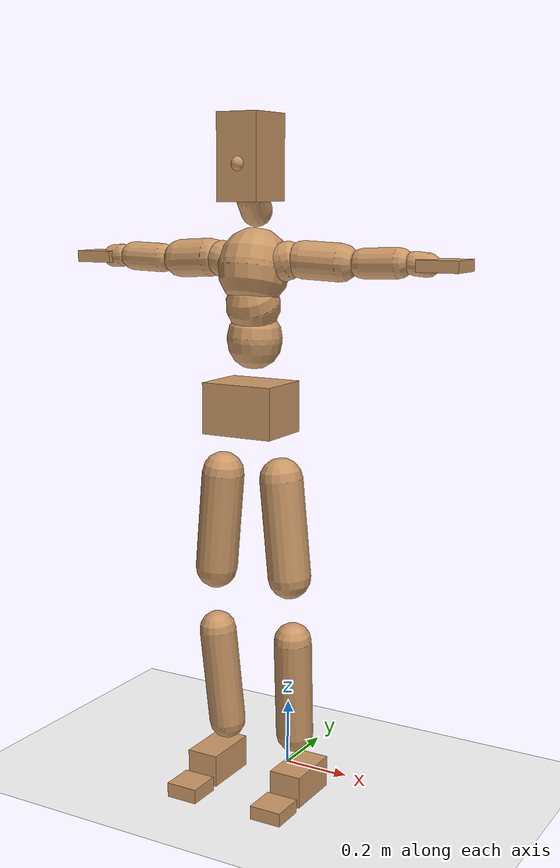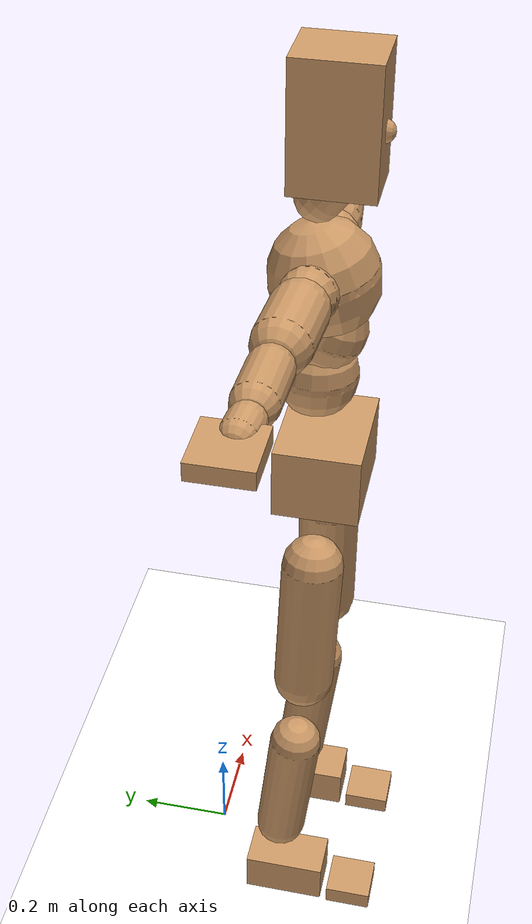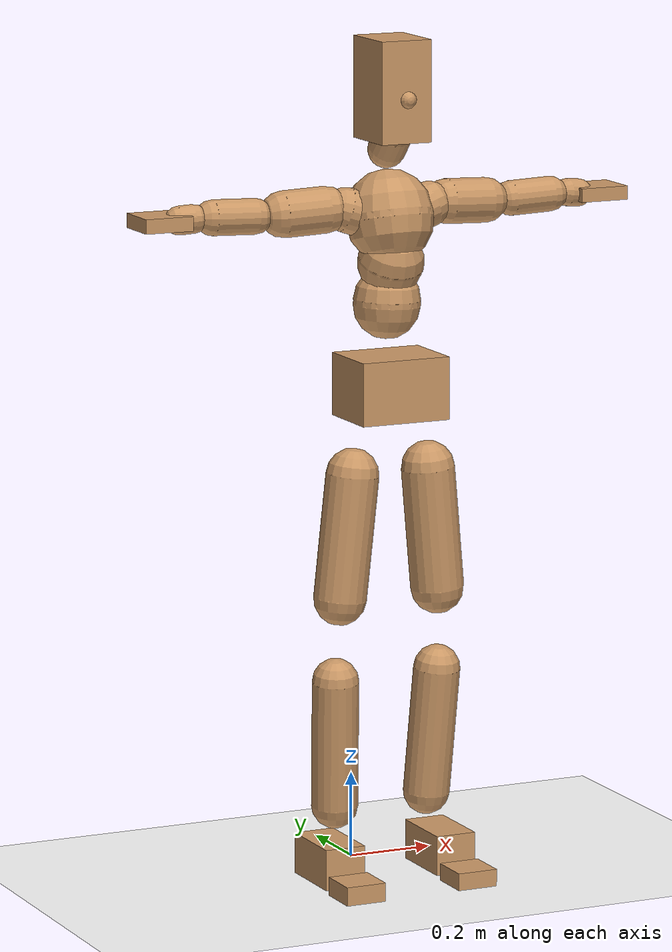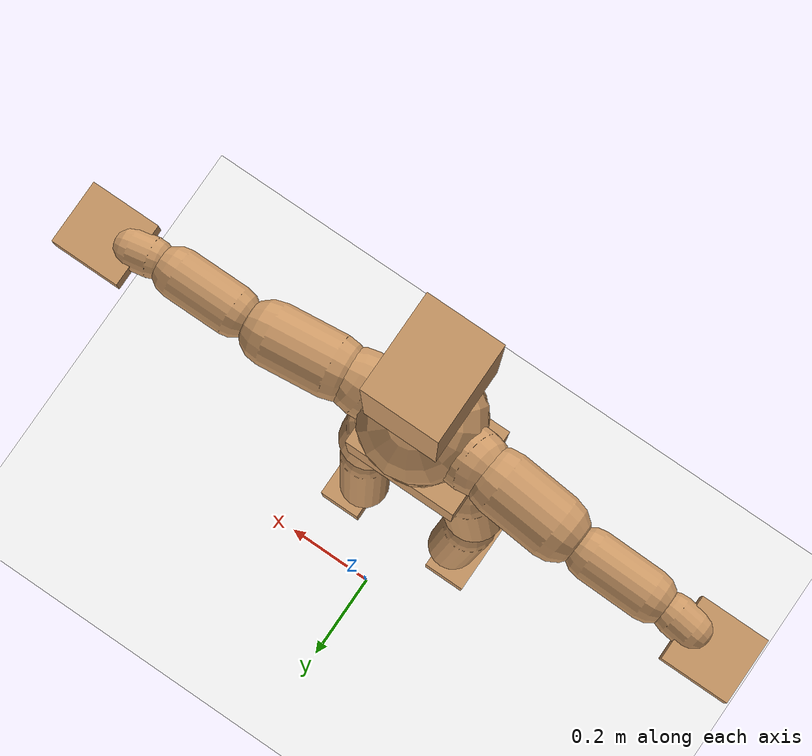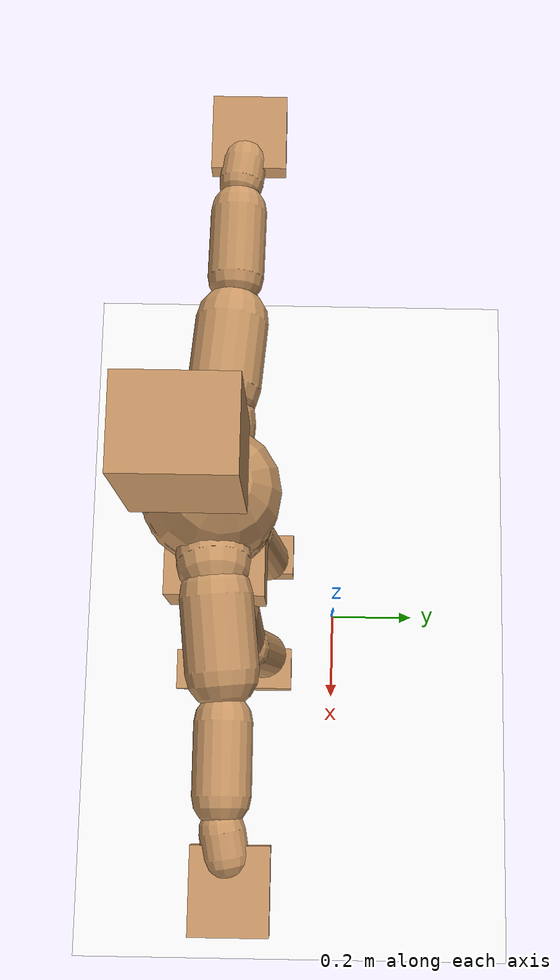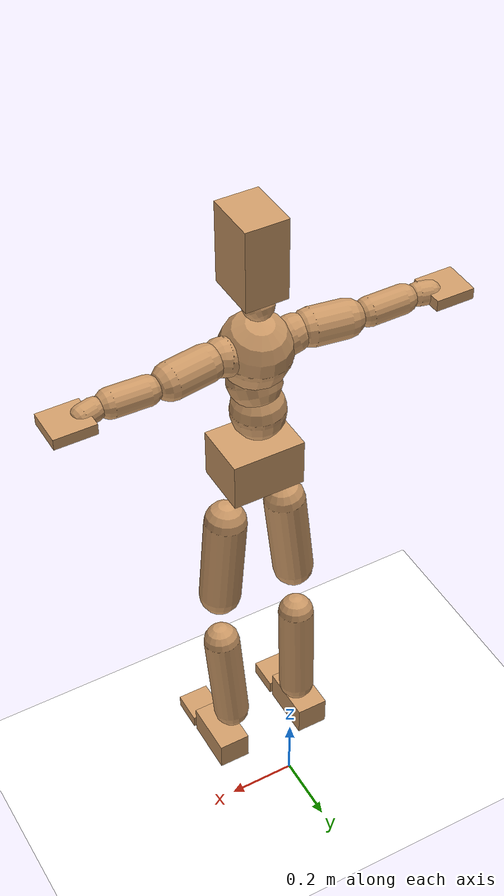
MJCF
<mujoco model="humanoid">
  <option integrator="implicitfast" />

  <visual>
    <global offwidth="1280" offheight="960" />
    <headlight active="1" ambient="0.34 0.34 0.34" diffuse="0.5 0.5 0.5" />
  </visual>

  <default>
    <joint damping="2" stiffness="2" armature="0.01" limited="true" solimplimit="0 .99 .01" />
    <geom condim="1" friction="0.7 0.005 0.0001" solimp=".99 .99 .003" solref="0.015 1" margin="0.001" rgba="0.8 0.6 .4 1" />
    <default class="smplcontact">
      <geom condim="3" friction="1. 0.005 0.0001" solref="0.015 1" solimp="0.98 0.98 0.001" priority="1" />
    </default>
    <default class="stiff_medium">
      <joint stiffness="10" />
    </default>
    <default class="stiff_medium_higher">
      <joint stiffness="50" />
    </default>
    <default class="stiff_high">
      <joint stiffness="100" />
    </default>
  </default>

  <asset>
    <texture type="skybox" builtin="gradient" rgb1="0.99 0.99 0.99" rgb2="0.608 0.828 0.892" width="100" />
    <texture builtin="flat" height="1278" mark="cross" markrgb="1 1 1" name="texgeom" random="0.01" rgb1="0.8 0.6 0.4" rgb2="0.8 0.6 0.4" type="cube" width="127" />
    <texture name="texplane" type="2d" builtin="checker" markrgb="1 1 1" rgb1="0.756 0.772 0.76" rgb2="0.6 0.6 0.6" width="100" height="100" />
    <material name="MatPlane" reflectance="0.5" texture="texplane" texrepeat="1 1" texuniform="true" />
    <material name="geom" texture="texgeom" texuniform="true" />
  </asset>

  <worldbody>
    <light name="tracking_light" pos="0 0 7" dir="0 0 -1" directional="true" cutoff="100" exponent="1" diffuse="1 1 1" specular="0.1 0.1 0.1" mode="trackcom" />
    <camera name="back" pos="0 3 2.4" xyaxes="-1 0 0 0 -1 2" mode="trackcom" />
    <camera name="side" pos="-3 0 2.4" xyaxes="0 -1 0 1 0 2" mode="trackcom" />
    <camera name="front_side" pos="-2.8 -2.8 0.8" xyaxes="0.5 -0.5 0 0.1 0.1 1" mode="trackcom" />
    <geom condim="3" name="floor" pos="0 0 0" rgba="1 1 1 1" size="100 100 .2" type="plane" material="MatPlane" />
    <body name="Pelvis" pos="-0.0018 -0.2233 1.16548" euler="90 0 0">
      <site name="Pelvis" size="0.01" />
      <freejoint name="Pelvis" />
      <geom type="box" pos="-0.0000 -0.0121 -0.0055" size="0.1069 0.0722 0.083" quat="1.0000 0.0000 0.0000 0.0000" density="3165.830099" name="Pelvis" />
      <body name="L_Hip" pos="0.086875 -0.11425 -0.0085">
        <joint name="L_Hip_x" type="hinge" pos="0 0 0" axis="1 0 0" stiffness="14.589841836734694" range="-160.0 22.92" class="stiff_medium" damping="24.10689143795971" armature="0.017703099984975993"/>
        <joint name="L_Hip_y" type="hinge" pos="0 0 0" axis="0 1 0" stiffness="14.527612551020406" range="-70.0 70.0" class="stiff_medium" damping="14.262213477061751" armature="0.014001662871370732"/>
        <joint name="L_Hip_z" type="hinge" pos="0 0 0" axis="0 0 1" stiffness="14.532940204081633" range="-28.65 90.0" class="stiff_medium" damping="16.042326803653772" armature="0.01770847782081624"/>
        <geom type="capsule" density="2040.816327" fromto="0.008625 -0.09375 -0.001125 0.03425 -0.37525 -0.0045" size="0.0615" name="L_Hip" />
        <body name="L_Knee" pos="0.042875 -0.469 -0.005625">
          <joint name="L_Knee_x" type="hinge" pos="0 0 0" axis="1 0 0" range="-5.16 171.89" damping="12.427866473289068" armature="0.016955687393418697" stiffness="2.8466087346938775"/>
          <joint name="L_Knee_y" type="hinge" pos="0 0 0" axis="0 1 0" range="-4.58 6.88" damping="11.131948599716756" armature="0.013404538190087151" stiffness="2.888953489795919"/>
          <joint name="L_Knee_z" type="hinge" pos="0 0 0" axis="0 0 1" range="-6.88 4.58" damping="12.396032357314194" armature="0.016980355499687936" stiffness="2.8279299387755104"/>
          <geom type="capsule" density="1234.567901" fromto="-0.003375 -0.0995 -0.010875 -0.013625 -0.398 -0.04375" size="0.0541" name="L_Knee" />
          <body name="L_Ankle" pos="-0.017 -0.4975 -0.054625">
            <joint name="L_Ankle_x" type="hinge" pos="0 0 0" axis="1 0 0" range="-45.84 45.84" class="stiff_medium" damping="7.851672460897973" armature="0.013699724540716359" stiffness="12.5"/>
            <joint name="L_Ankle_y" type="hinge" pos="0 0 0" axis="0 1 0" range="-74.48 22.92" class="stiff_medium" damping="3.906065471805431" armature="0.013562086640027188" stiffness="12.5"/>
            <joint name="L_Ankle_z" type="hinge" pos="0 0 0" axis="0 0 1" range="-4.58 4.58" class="stiff_medium" damping="7.548153538649296" armature="0.01266102707622753" stiffness="12.5"/>
            <geom type="box" pos="0.029125 -0.029875 0.03025" size="0.0483 0.0464 0.085" quat="1.0000 0.0000 0.0000 0.0000" density="449.071558" name="L_Ankle" class="smplcontact" />
            <body name="L_Toe" pos="0.033 -0.06975 0.149125">
              <joint name="L_Toe_x" type="hinge" pos="0 0 0" axis="1 0 0" range="-91.67 22.92" armature="0.012138557001780384" damping="2.4635905708721553" stiffness="2.5"/>
              <joint name="L_Toe_y" type="hinge" pos="0 0 0" axis="0 1 0" range="-4.58 4.58" armature="0.01150678605468797" damping="2.3986231524239034" stiffness="2.5"/>
              <joint name="L_Toe_z" type="hinge" pos="0 0 0" axis="0 0 1" range="-4.58 4.58" armature="0.010229379204578662" damping="2.261567952171531" stiffness="2.5"/>
              <geom type="box" pos="-0.00375 0.006875 0.031" size="0.0478 0.02 0.0496" quat="1.0000 0.0000 0.0000 0.0000" density="423.206892" name="L_Toe" class="smplcontact" />
            </body>
          </body>
        </body>
      </body>
      <body name="R_Hip" pos="-0.084625 -0.113125 -0.005375">
        <joint name="R_Hip_x" type="hinge" pos="0 0 0" axis="1 0 0" stiffness="14.589841836734694" range="-160.0 22.92" class="stiff_medium" damping="24.10689143795971" armature="0.017703099984975993"/>
        <joint name="R_Hip_y" type="hinge" pos="0 0 0" axis="0 1 0" stiffness="14.527612551020406" range="-70.0 70.0" class="stiff_medium" damping="14.262213477061751" armature="0.014001662871370732"/>
        <joint name="R_Hip_z" type="hinge" pos="0 0 0" axis="0 0 1" stiffness="14.532940204081633" range="-90.0 28.65" class="stiff_medium" damping="16.042326803653772" armature="0.01770847782081624"/>
        <geom type="capsule" density="2040.816327" fromto="-0.009625 -0.095625 -0.00225 -0.03825 -0.382625 -0.008875" size="0.0606" name="R_Hip" />
        <body name="R_Knee" pos="-0.047875 -0.47825 -0.011125">
          <joint name="R_Knee_x" type="hinge" pos="0 0 0" axis="1 0 0" range="-5.16 171.89" damping="12.427866473289068" armature="0.016955687393418697" stiffness="2.8466087346938775"/>
          <joint name="R_Knee_y" type="hinge" pos="0 0 0" axis="0 1 0" range="-6.88 4.58" damping="11.131948599716756" armature="0.013404538190087151" stiffness="2.888953489795919"/>
          <joint name="R_Knee_z" type="hinge" pos="0 0 0" axis="0 0 1" range="-4.58 6.88" damping="12.396032357314194" armature="0.016980355499687936" stiffness="2.8279299387755104"/>
          <geom type="capsule" density="1234.567901" fromto="0.004 -0.099625 -0.010625 0.01575 -0.398375 -0.04225" size="0.0541" name="R_Knee" />
          <body name="R_Ankle" pos="0.01975 -0.498 -0.052875">
            <joint name="R_Ankle_x" type="hinge" pos="0 0 0" axis="1 0 0" range="-45.84 45.84" class="stiff_medium" damping="7.851672460897973" armature="0.013699724540716359" stiffness="12.5"/>
            <joint name="R_Ankle_y" type="hinge" pos="0 0 0" axis="0 1 0" range="-22.92 74.48" class="stiff_medium" damping="3.906065471805431" armature="0.013562086640027188" stiffness="12.5"/>
            <joint name="R_Ankle_z" type="hinge" pos="0 0 0" axis="0 0 1" range="-4.58 4.58" class="stiff_medium" damping="7.548153538649296" armature="0.01266102707622753" stiffness="12.5"/>
            <geom type="box" pos="-0.0265 -0.02175 0.032" size="0.0483 0.0478 0.0865" quat="1.0000 0.0000 0.0000 0.0000" density="434.700981" name="R_Ankle" class="smplcontact" />
            <body name="R_Toe" pos="-0.03175 -0.060125 0.154125">
              <joint name="R_Toe_x" type="hinge" pos="0 0 0" axis="1 0 0" range="-91.67 22.92" armature="0.012138557001780384" damping="2.4635905708721553" stiffness="2.5"/>
              <joint name="R_Toe_y" type="hinge" pos="0 0 0" axis="0 1 0" range="-4.58 4.58" armature="0.01150678605468797" damping="2.3986231524239034" stiffness="2.5"/>
              <joint name="R_Toe_z" type="hinge" pos="0 0 0" axis="0 0 1" range="-4.58 4.58" armature="0.010229379204578662" damping="2.261567952171531" stiffness="2.5"/>
              <geom type="box" pos="0.00525 0.005625 0.028375" size="0.0479 0.0216 0.0493" quat="1.0000 0.0000 0.0000 0.0000" density="407.384095" name="R_Toe" class="smplcontact" />
            </body>
          </body>
        </body>
      </body>
      <body name="Torso" pos="-0.0025 0.109 -0.0267">
        <joint name="Torso_x" type="hinge" pos="0 0 0" axis="1 0 0" range="-25.78 57.3" class="stiff_medium" damping="13.296564125699913" armature="0.008717287887859698" stiffness="9.01394612244898"/>
        <joint name="Torso_y" type="hinge" pos="0 0 0" axis="0 1 0" range="-57.3 57.3" class="stiff_high" damping="11.857975578739207" armature="0.003844721181114158" stiffness="91.43158775510203"/>
        <joint name="Torso_z" type="hinge" pos="0 0 0" axis="0 0 1" range="-34.38 34.38" class="stiff_high" damping="16.19322021929785" armature="0.007045583299802337" stiffness="93.0442413043478"/>
        <geom type="capsule" density="2040.816327" fromto="0.0025 0.0608 0.0005 0.003 0.0743 0.0006" size="0.0769" name="Torso" />
        <body name="Spine" pos="0.0055 0.1352 0.0011">
          <joint name="Spine_x" type="hinge" pos="0 0 0" axis="1 0 0" stiffness="8.855082083333333" range="-25.78 57.3" class="stiff_medium" damping="13.076797677453987" armature="0.008582774445870408"/>
          <joint name="Spine_y" type="hinge" pos="0 0 0" axis="0 1 0" stiffness="8.966550425531915" range="-57.3 57.3" class="stiff_high" damping="4.670538649446806" armature="0.003801268715520681"/>
          <joint name="Spine_z" type="hinge" pos="0 0 0" axis="0 0 1" stiffness="17.399179999999998" range="-34.38 34.38" class="stiff_high" damping="8.612389288095052" armature="0.005920876830729188"/>
          <geom type="capsule" density="2040.816327" fromto="0.0007 0.0238 0.0114 0.0008 0.0291 0.014" size="0.0755" name="Spine" />
          <body name="Chest" pos="0.0015 0.0529 0.0254">
            <joint name="Chest_x" type="hinge" pos="0 0 0" axis="1 0 0" stiffness="8.445605217391304" range="-25.78 57.3" class="stiff_medium" damping="12.725283601188007" armature="0.008521609816255422"/>
            <joint name="Chest_y" type="hinge" pos="0 0 0" axis="0 1 0" stiffness="7.416513142857141" range="-57.3 57.3" class="stiff_high" damping="4.235867490218071" armature="0.0037801147775485618"/>
            <joint name="Chest_z" type="hinge" pos="0 0 0" axis="0 0 1" stiffness="17.461715111111108" range="-34.38 34.38" class="stiff_high" damping="8.265316118618486" armature="0.005433748608980235"/>
            <geom type="capsule" density="2040.816327" fromto="-0.0009 0.0682 -0.0173 -0.001 0.0833 -0.0212" size="0.1002" name="Chest" />
            <body name="Neck" pos="-0.0028 0.2139 -0.0429">
              <joint name="Neck_x" type="hinge" pos="0 0 0" axis="1 0 0" range="-28.65 57.3" class="stiff_medium_higher" damping="10.000000000000002" armature="0.010000000000000005" stiffness="50.0"/>
              <joint name="Neck_y" type="hinge" pos="0 0 0" axis="0 1 0" range="-40.11 40.11" class="stiff_medium_higher" damping="10.0" armature="0.01" stiffness="50.0"/>
              <joint name="Neck_z" type="hinge" pos="0 0 0" axis="0 0 1" range="-40.11 40.11" class="stiff_medium_higher" damping="9.999999999999993" armature="0.009999999999999985" stiffness="50.0"/>
              <geom type="capsule" density="1000" fromto="0.001 0.013 0.0103 0.0041 0.052 0.0411" size="0.0436" name="Neck" />
              <body name="Head" pos="0.0052 0.065 0.0513">
                <joint name="Head_x" type="hinge" pos="0 0 0" axis="1 0 0" range="-28.65 57.3" class="stiff_medium_higher" damping="2.0000000000000036" armature="0.010000000000000035" stiffness="50.0"/>
                <joint name="Head_y" type="hinge" pos="0 0 0" axis="0 1 0" range="-40.11 40.11" class="stiff_medium_higher" damping="1.9999999999999998" armature="0.009999999999999998" stiffness="50.0"/>
                <joint name="Head_z" type="hinge" pos="0 0 0" axis="0 0 1" range="-40.11 40.11" class="stiff_medium_higher" damping="2.0000000000000004" armature="0.010000000000000007" stiffness="50.0"/>
                <geom type="box" pos="-0.0042 0.0876 -0.0116" size="0.0606 0.1154 0.076" quat="1.0000 0.0000 0.0000 0.0000" density="1018.069894" name="Head" />
                <geom type="capsule" name="nose" size="0.02 0.01" pos="0 0.07 0.05" quat="1 0 0 0" mass="0" contype="0" conaffinity="0" />
              </body>
            </body>
            <body name="L_Thorax" pos="0.052205 0.0806262 -0.0225912">
              <joint name="L_Thorax_x" type="hinge" pos="0 0 0" axis="1 0 0" range="-10.89 4.58" class="stiff_medium_higher" damping="10.752161019344761" armature="0.005492534491244081" stiffness="26.310478061224497"/>
              <joint name="L_Thorax_y" type="hinge" pos="0 0 0" axis="0 1 0" range="-28.65 17.19" class="stiff_medium_higher" damping="8.656507675839675" armature="0.0035990909186137975" stiffness="26.025712755102038"/>
              <joint name="L_Thorax_z" type="hinge" pos="0 0 0" axis="0 0 1" range="-31.51 40.11" class="stiff_medium_higher" damping="8.654936190408645" armature="0.0035973494554525543" stiffness="26.02885867346939"/>
              <geom type="capsule" density="1000" fromto="0.0120575 0.00404125 -0.0011925 0.04823 0.016165 -0.00470375" size="0.0521" name="L_Thorax" />
              <body name="L_Shoulder" pos="0.0602875 0.0202062 -0.00589625">
                <joint name="L_Shoulder_x" type="hinge" pos="0 0 0" axis="1 0 0" range="-97.4 97.4" class="stiff_medium" damping="3.4355706113714737" armature="0.006181474178058859" stiffness="5.3039961224489796"/>
                <joint name="L_Shoulder_y" type="hinge" pos="0 0 0" axis="0 1 0" range="-108.86 80.21" class="stiff_medium" damping="2.619467278569037" armature="0.00364693025105719" stiffness="5.226319999999999"/>
                <joint name="L_Shoulder_z" type="hinge" pos="0 0 0" axis="0 0 1" range="-97.4 85.94" class="stiff_medium" damping="2.6197349169276216" armature="0.0036444798930498406" stiffness="5.230902653061225"/>
                <geom type="capsule" density="1000" fromto="0.0343837 -0.0017225 -0.00364375 0.137601 -0.0067575 -0.014575" size="0.0517" name="L_Shoulder" />
                <body name="L_Elbow" pos="0.171985 -0.00848 -0.0182187">
                  <joint name="L_Elbow_x" type="hinge" pos="0 0 0" axis="1 0 0" range="-17.19 4.58" damping="3.1785577743548" armature="0.007393662378869271" stiffness="1.0931772653061227"/>
                  <joint name="L_Elbow_y" type="hinge" pos="0 0 0" axis="0 1 0" range="-180.0 17.19" damping="2.3033030607353275" armature="0.003885042260915372" stiffness="1.0924370204081633"/>
                  <joint name="L_Elbow_z" type="hinge" pos="0 0 0" axis="0 0 1" range="-100.84 4.58" damping="2.3008114328593745" armature="0.0038721783452337244" stiffness="1.0936961632653062"/>
                  <geom type="capsule" density="1000" fromto="0.0329925 0.0011925 -0.0001325 0.132102 0.00477 -0.00059625" size="0.0405" name="L_Elbow" />
                  <body name="L_Wrist" pos="0.165095 0.0059625 -0.000795">
                    <joint name="L_Wrist_x" type="hinge" pos="0 0 0" axis="1 0 0" range="-180.0 22.92" armature="0.00800142785574374" damping="1.4109622696560504" stiffness="1.2440370408163264"/>
                    <joint name="L_Wrist_y" type="hinge" pos="0 0 0" axis="0 1 0" range="-17.19 17.19" armature="0.004879471429003509" damping="1.0965644446974565" stiffness="1.2321555714285712"/>
                    <joint name="L_Wrist_z" type="hinge" pos="0 0 0" axis="0 0 1" range="-22.92 22.92" armature="0.004698864868438949" damping="1.0781698402209008" stiffness="1.2369478979591837"/>
                    <geom type="capsule" density="1000" fromto="0.01113 -0.00106 -0.0019875 0.04452 -0.00430625 -0.00795" size="0.0318" name="L_Wrist" class="smplcontact" />
                    <body name="L_Hand" pos="0.05565 -0.0054325 -0.00987125">
                      <joint name="L_Hand_x" type="hinge" pos="0 0 0" axis="1 0 0" range="-17.19 17.19" armature="0.009755552996203854" damping="1.607861844916774" stiffness="1.3249990612244895"/>
                      <joint name="L_Hand_y" type="hinge" pos="0 0 0" axis="0 1 0" range="-51.57 51.57" armature="0.007043747166286061" damping="1.3662326477640436" stiffness="1.3249990408163264"/>
                      <joint name="L_Hand_z" type="hinge" pos="0 0 0" axis="0 0 1" range="-91.67 91.67" armature="0.0063208783295227835" damping="1.294230077361777" stiffness="1.3249989999999998"/>
                      <geom type="box" pos="0.0326612 0.0006625 -0.0038425" size="0.0585 0.0158 0.0538" quat="1.0000 0.0000 0.0000 0.0000" density="400.552564" name="L_Hand" class="smplcontact" />
                    </body>
                  </body>
                </body>
              </body>
            </body>
            <body name="R_Thorax" pos="-0.0541925 0.078705 -0.0255725">
              <joint name="R_Thorax_x" type="hinge" pos="0 0 0" axis="1 0 0" range="-10.89 4.58" class="stiff_medium_higher" damping="10.752161019344761" armature="0.005492534491244081" stiffness="26.310478061224497"/>
              <joint name="R_Thorax_y" type="hinge" pos="0 0 0" axis="0 1 0" range="-17.19 28.65" class="stiff_medium_higher" damping="8.656507675839675" armature="0.0035990909186137975" stiffness="26.025712755102038"/>
              <joint name="R_Thorax_z" type="hinge" pos="0 0 0" axis="0 0 1" range="-40.11 31.51" class="stiff_medium_higher" damping="8.654936190408645" armature="0.0035973494554525543" stiffness="26.02885867346939"/>
              <geom type="capsule" density="1000" fromto="-0.01272 0.00430625 -0.0011925 -0.05088 0.017225 -0.00483625" size="0.0511" name="R_Thorax" />
              <body name="R_Shoulder" pos="-0.0636 0.0215975 -0.00602875">
                <joint name="R_Shoulder_x" type="hinge" pos="0 0 0" axis="1 0 0" range="-97.4 97.4" class="stiff_medium" damping="3.4355706113714737" armature="0.006181474178058859" stiffness="5.3039961224489796"/>
                <joint name="R_Shoulder_y" type="hinge" pos="0 0 0" axis="0 1 0" range="-80.21 108.86" class="stiff_medium" damping="2.619467278569037" armature="0.00364693025105719" stiffness="5.226319999999999"/>
                <joint name="R_Shoulder_z" type="hinge" pos="0 0 0" axis="0 0 1" range="-85.94 97.4" class="stiff_medium" damping="2.6197349169276216" armature="0.0036444798930498406" stiffness="5.230902653061225"/>
                <geom type="capsule" density="1000" fromto="-0.0335888 -0.00178875 -0.00284875 -0.134488 -0.00708875 -0.0113288" size="0.0531" name="R_Shoulder" />
                <body name="R_Elbow" pos="-0.168076 -0.00881125 -0.0141775">
                  <joint name="R_Elbow_x" type="hinge" pos="0 0 0" axis="1 0 0" range="-17.19 4.58" damping="3.1785577743548" armature="0.007393662378869271" stiffness="1.0931772653061227"/>
                  <joint name="R_Elbow_y" type="hinge" pos="0 0 0" axis="0 1 0" range="-17.19 180.0" damping="2.3033030607353275" armature="0.003885042260915372" stiffness="1.0924370204081633"/>
                  <joint name="R_Elbow_z" type="hinge" pos="0 0 0" axis="0 0 1" range="-4.58 100.84" damping="2.3008114328593745" armature="0.0038721783452337244" stiffness="1.0936961632653062"/>
                  <geom type="capsule" density="1000" fromto="-0.0338538 0.00106 -0.00072875 -0.135282 0.0041075 -0.002915" size="0.0408" name="R_Elbow" />
                  <body name="R_Wrist" pos="-0.169136 0.0051675 -0.00371">
                    <joint name="R_Wrist_x" type="hinge" pos="0 0 0" axis="1 0 0" range="-180.0 22.92" armature="0.00800142785574374" damping="1.4109622696560504" stiffness="1.2440370408163264"/>
                    <joint name="R_Wrist_y" type="hinge" pos="0 0 0" axis="0 1 0" range="-17.19 17.19" armature="0.004879471429003509" damping="1.0965644446974565" stiffness="1.2321555714285712"/>
                    <joint name="R_Wrist_z" type="hinge" pos="0 0 0" axis="0 0 1" range="-22.92 22.92" armature="0.004698864868438949" damping="1.0781698402209008" stiffness="1.2369478979591837"/>
                    <geom type="capsule" density="1000" fromto="-0.0111962 -0.000795 -0.00139125 -0.0448512 -0.00324625 -0.00549875" size="0.0326" name="R_Wrist" class="smplcontact" />
                    <body name="R_Hand" pos="-0.0560475 -0.00404125 -0.00682375">
                      <joint name="R_Hand_x" type="hinge" pos="0 0 0" axis="1 0 0" range="-17.19 17.19" armature="0.009755552996203854" damping="1.607861844916774" stiffness="1.3249990612244895"/>
                      <joint name="R_Hand_y" type="hinge" pos="0 0 0" axis="0 1 0" range="-51.57 51.57" armature="0.007043747166286061" damping="1.3662326477640436" stiffness="1.3249990408163264"/>
                      <joint name="R_Hand_z" type="hinge" pos="0 0 0" axis="0 0 1" range="-91.67 91.67" armature="0.0063208783295227835" damping="1.294230077361777" stiffness="1.3249989999999998"/>
                      <geom type="box" pos="-0.0306075 -0.00059625 -0.00523375" size="0.0569 0.0164 0.0546" quat="1.0000 0.0000 0.0000 0.0000" density="403.679611" name="R_Hand" class="smplcontact" />
                    </body>
                  </body>
                </body>
              </body>
            </body>
          </body>
        </body>
      </body>
    </body>
  </worldbody>
  <actuator>
    <general name="L_Hip_x" joint="L_Hip_x" biastype="affine" gainprm="419.21001901187765" biasprm="-314.15541988928595 -262.6171530612245 -3.214252191727961" ctrllimited="true" ctrlrange="-1 1" forcerange="-525.234306122449 525.234306122449" />
    <general name="L_Hip_y" joint="L_Hip_y" biastype="affine" gainprm="319.47888605139207" biasprm="0.0 -261.4970259183673 -2.8524426954123503" ctrllimited="true" ctrlrange="-1 1" forcerange="-522.9940518367346 522.9940518367346" />
    <general name="L_Hip_z" joint="L_Hip_z" biastype="affine" gainprm="270.857650054052" biasprm="140.0515535677715 -261.5929236734694 -3.2084653607307545" ctrllimited="true" ctrlrange="-1 1" forcerange="-523.1858473469388 523.1858473469388" />
    <general name="L_Knee_x" joint="L_Knee_x" biastype="affine" gainprm="395.8344512323349" biasprm="372.7618077038531 -256.194786122449 -3.106966618322267" ctrllimited="true" ctrlrange="-1 1" forcerange="-512.389572244898 512.389572244898" />
    <general name="L_Knee_y" joint="L_Knee_y" biastype="affine" gainprm="26.002496647202126" biasprm="5.218651159560636 -260.0058140816327 -2.782987149929189" ctrllimited="true" ctrlrange="-1 1" forcerange="-520.0116281632654 520.0116281632654" />
    <general name="L_Knee_z" joint="L_Knee_z" biastype="affine" gainprm="25.45324423230062" biasprm="-5.108417254301171 -254.51369448979594 -3.0990080893285485" ctrllimited="true" ctrlrange="-1 1" forcerange="-509.0273889795919 509.0273889795919" />
    <general name="L_Ankle_x" joint="L_Ankle_x" biastype="affine" gainprm="90.00662952534759" biasprm="0.0 -112.5 -2.6172241536326575" ctrllimited="true" ctrlrange="-1 1" forcerange="-225.0 225.0" />
    <general name="L_Ankle_y" joint="L_Ankle_y" biastype="affine" gainprm="95.62222639363935" biasprm="-50.61891163096555 -112.5 -2.6040436478702875" ctrllimited="true" ctrlrange="-1 1" forcerange="-225.0 225.0" />
    <general name="L_Ankle_z" joint="L_Ankle_z" biastype="affine" gainprm="8.992808970900782" biasprm="0.0 -112.5 -2.5160511795497653" ctrllimited="true" ctrlrange="-1 1" forcerange="-225.0 225.0" />
    <general name="L_Toe_x" joint="L_Toe_x" biastype="affine" gainprm="89.99877554371359" biasprm="-53.996123733574564 -90.0 -0.9854362283488621" ctrllimited="true" ctrlrange="-1 1" forcerange="-180.0 180.0" />
    <general name="L_Toe_y" joint="L_Toe_y" biastype="affine" gainprm="7.194247176720626" biasprm="0.0 -90.0 -0.9594492609695614" ctrllimited="true" ctrlrange="-1 1" forcerange="-180.0 180.0" />
    <general name="L_Toe_z" joint="L_Toe_z" biastype="affine" gainprm="7.194247176720626" biasprm="0.0 -90.0 -0.9046271808686124" ctrllimited="true" ctrlrange="-1 1" forcerange="-180.0 180.0" />
    <general name="R_Hip_x" joint="R_Hip_x" biastype="affine" gainprm="419.21001901187765" biasprm="-314.15541988928595 -262.6171530612245 -3.214252191727961" ctrllimited="true" ctrlrange="-1 1" forcerange="-525.234306122449 525.234306122449" />
    <general name="R_Hip_y" joint="R_Hip_y" biastype="affine" gainprm="319.47888605139207" biasprm="0.0 -261.4970259183673 -2.8524426954123503" ctrllimited="true" ctrlrange="-1 1" forcerange="-522.9940518367346 522.9940518367346" />
    <general name="R_Hip_z" joint="R_Hip_z" biastype="affine" gainprm="270.857650054052" biasprm="-140.0515535677715 -261.5929236734694 -3.2084653607307545" ctrllimited="true" ctrlrange="-1 1" forcerange="-523.1858473469388 523.1858473469388" />
    <general name="R_Knee_x" joint="R_Knee_x" biastype="affine" gainprm="395.8344512323349" biasprm="372.7618077038531 -256.194786122449 -3.106966618322267" ctrllimited="true" ctrlrange="-1 1" forcerange="-512.389572244898 512.389572244898" />
    <general name="R_Knee_y" joint="R_Knee_y" biastype="affine" gainprm="26.002496647202126" biasprm="-5.218651159560636 -260.0058140816327 -2.782987149929189" ctrllimited="true" ctrlrange="-1 1" forcerange="-520.0116281632654 520.0116281632654" />
    <general name="R_Knee_z" joint="R_Knee_z" biastype="affine" gainprm="25.45324423230062" biasprm="5.108417254301171 -254.51369448979594 -3.0990080893285485" ctrllimited="true" ctrlrange="-1 1" forcerange="-509.0273889795919 509.0273889795919" />
    <general name="R_Ankle_x" joint="R_Ankle_x" biastype="affine" gainprm="90.00662952534759" biasprm="0.0 -112.5 -2.6172241536326575" ctrllimited="true" ctrlrange="-1 1" forcerange="-225.0 225.0" />
    <general name="R_Ankle_y" joint="R_Ankle_y" biastype="affine" gainprm="95.62222639363935" biasprm="50.61891163096555 -112.5 -2.6040436478702875" ctrllimited="true" ctrlrange="-1 1" forcerange="-225.0 225.0" />
    <general name="R_Ankle_z" joint="R_Ankle_z" biastype="affine" gainprm="8.992808970900782" biasprm="0.0 -112.5 -2.5160511795497653" ctrllimited="true" ctrlrange="-1 1" forcerange="-225.0 225.0" />
    <general name="R_Toe_x" joint="R_Toe_x" biastype="affine" gainprm="89.99877554371359" biasprm="-53.996123733574564 -90.0 -0.9854362283488621" ctrllimited="true" ctrlrange="-1 1" forcerange="-180.0 180.0" />
    <general name="R_Toe_y" joint="R_Toe_y" biastype="affine" gainprm="7.194247176720626" biasprm="0.0 -90.0 -0.9594492609695614" ctrllimited="true" ctrlrange="-1 1" forcerange="-180.0 180.0" />
    <general name="R_Toe_z" joint="R_Toe_z" biastype="affine" gainprm="7.194247176720626" biasprm="0.0 -90.0 -0.9046271808686124" ctrllimited="true" ctrlrange="-1 1" forcerange="-180.0 180.0" />
    <general name="Torso_x" joint="Torso_x" biastype="affine" gainprm="156.84477639727098" biasprm="59.505866057318 -216.33470693877553 -3.5457504335199768" ctrllimited="true" ctrlrange="-1 1" forcerange="-324.5020604081633 324.5020604081633" />
    <general name="Torso_y" joint="Torso_y" biastype="affine" gainprm="219.45197455967397" biasprm="0.0 -219.43581061224486 -2.3715951157478417" ctrllimited="true" ctrlrange="-1 1" forcerange="-329.1537159183673 329.1537159183673" />
    <general name="Torso_z" joint="Torso_z" biastype="affine" gainprm="133.99357690475964" biasprm="0.0 -223.30617913043474 -3.23864404385957" ctrllimited="true" ctrlrange="-1 1" forcerange="-334.9592686956521 334.9592686956521" />
    <general name="Spine_x" joint="Spine_x" biastype="affine" gainprm="154.08050486134445" biasprm="58.457119802955894 -212.52197 -3.487146047321063" ctrllimited="true" ctrlrange="-1 1" forcerange="-318.782955 318.782955" />
    <general name="Spine_y" joint="Spine_y" biastype="affine" gainprm="215.21306193898633" biasprm="0.0 -215.19721021276595 -2.335269324723403" ctrllimited="true" ctrlrange="-1 1" forcerange="-322.7958153191489 322.7958153191489" />
    <general name="Spine_z" joint="Spine_z" biastype="affine" gainprm="125.28332386438697" biasprm="0.0 -208.79016 -2.870796429365017" ctrllimited="true" ctrlrange="-1 1" forcerange="-313.18523999999996 313.18523999999996" />
    <general name="Chest_x" joint="Chest_x" biastype="affine" gainprm="146.95551136725376" biasprm="55.753944611168 -202.69452521739132 -3.393408960316802" ctrllimited="true" ctrlrange="-1 1" forcerange="-304.04178782608693 304.04178782608693" />
    <general name="Chest_y" joint="Chest_y" biastype="affine" gainprm="178.00942688507038" biasprm="0.0 -177.9963154285714 -2.1179337451090356" ctrllimited="true" ctrlrange="-1 1" forcerange="-266.9944731428571 266.9944731428571" />
    <general name="Chest_z" joint="Chest_z" biastype="affine" gainprm="125.7336098306353" biasprm="0.0 -209.5405813333333 -2.755105372872829" ctrllimited="true" ctrlrange="-1 1" forcerange="-314.31087199999996 314.31087199999996" />
    <general name="Neck_x" joint="Neck_x" biastype="affine" gainprm="27.00198885760427" biasprm="9.000662952534757 -36.0 -0.8000000000000003" ctrllimited="true" ctrlrange="-1 1" forcerange="-72.0 72.0" />
    <general name="Neck_y" joint="Neck_y" biastype="affine" gainprm="25.20185626709732" biasprm="0.0 -36.0 -0.8" ctrllimited="true" ctrlrange="-1 1" forcerange="-72.0 72.0" />
    <general name="Neck_z" joint="Neck_z" biastype="affine" gainprm="25.20185626709732" biasprm="0.0 -36.0 -0.7999999999999994" ctrllimited="true" ctrlrange="-1 1" forcerange="-72.0 72.0" />
    <general name="Head_x" joint="Head_x" biastype="affine" gainprm="18.001325905069514" biasprm="6.000441968356505 -24.0 -0.8000000000000015" ctrllimited="true" ctrlrange="-1 1" forcerange="-48.0 48.0" />
    <general name="Head_y" joint="Head_y" biastype="affine" gainprm="16.801237511398213" biasprm="0.0 -24.0 -0.7999999999999999" ctrllimited="true" ctrlrange="-1 1" forcerange="-48.0 48.0" />
    <general name="Head_z" joint="Head_z" biastype="affine" gainprm="16.801237511398213" biasprm="0.0 -24.0 -0.8000000000000003" ctrllimited="true" ctrlrange="-1 1" forcerange="-48.0 48.0" />
    <general name="L_Thorax_x" joint="L_Thorax_x" biastype="affine" gainprm="8.524671780005175" biasprm="-3.4770962464015946 -63.14514734693879 -0.860172881547581" ctrllimited="true" ctrlrange="-1 1" forcerange="-126.29029469387758 126.29029469387758" />
    <general name="L_Thorax_y" joint="L_Thorax_y" biastype="affine" gainprm="24.98652465153687" biasprm="-6.246631162884218 -62.461710612244886 -0.692520614067174" ctrllimited="true" ctrlrange="-1 1" forcerange="-124.92342122448977 124.92342122448977" />
    <general name="L_Thorax_z" joint="L_Thorax_z" biastype="affine" gainprm="39.04343825747016" biasprm="4.688265414887508 -62.46926081632654 -0.6923948952326916" ctrllimited="true" ctrlrange="-1 1" forcerange="-124.93852163265308 124.93852163265308" />
    <general name="L_Shoulder_x" joint="L_Shoulder_x" biastype="affine" gainprm="43.279353003673734" biasprm="0.0 -25.459181387755102 -0.9161521630323931" ctrllimited="true" ctrlrange="-1 1" forcerange="-50.918362775510204 50.918362775510204" />
    <general name="L_Shoulder_y" joint="L_Shoulder_y" biastype="affine" gainprm="41.39112503423586" biasprm="-6.272045973612193 -25.086336 -0.6985246076184098" ctrllimited="true" ctrlrange="-1 1" forcerange="-50.172672 50.172672" />
    <general name="L_Shoulder_z" joint="L_Shoulder_z" biastype="affine" gainprm="40.171909368365355" biasprm="-2.511018224945282 -25.108332734693878 -0.6985959778473658" ctrllimited="true" ctrlrange="-1 1" forcerange="-50.216665469387756 50.216665469387756" />
    <general name="L_Elbow_x" joint="L_Elbow_x" biastype="affine" gainprm="7.476509558353197" biasprm="-4.330674576519699 -39.35438155102042 -0.508569243896768" ctrllimited="true" ctrlrange="-1 1" forcerange="-78.70876310204083 78.70876310204083" />
    <general name="L_Elbow_y" joint="L_Elbow_y" biastype="affine" gainprm="67.67545257136767" biasprm="-55.87626367028943 -39.327732734693875 -0.36852848971765245" ctrllimited="true" ctrlrange="-1 1" forcerange="-78.65546546938775 78.65546546938775" />
    <general name="L_Elbow_z" joint="L_Elbow_z" biastype="affine" gainprm="36.22176204255759" biasprm="-33.07443382865295 -39.373061877551024 -0.36812982925749993" ctrllimited="true" ctrlrange="-1 1" forcerange="-78.74612375510205 78.74612375510205" />
    <general name="L_Wrist_x" joint="L_Wrist_x" biastype="affine" gainprm="13.217727298647333" biasprm="-10.231818470685607 -7.464222244897958 -0.5643849078624202" ctrllimited="true" ctrlrange="-1 1" forcerange="-14.928444489795917 14.928444489795917" />
    <general name="L_Wrist_y" joint="L_Wrist_y" biastype="affine" gainprm="2.2180434007032876" biasprm="0.0 -7.392933428571427 -0.4386257778789826" ctrllimited="true" ctrlrange="-1 1" forcerange="-14.785866857142855 14.785866857142855" />
    <general name="L_Wrist_z" joint="L_Wrist_z" biastype="affine" gainprm="2.9688936318338586" biasprm="0.0 -7.421687387755102 -0.43126793608836034" ctrllimited="true" ctrlrange="-1 1" forcerange="-14.843374775510204 14.843374775510204" />
    <general name="L_Hand_x" joint="L_Hand_x" biastype="affine" gainprm="2.38517399250132" biasprm="0.0 -7.949994367346937 -0.6431447379667097" ctrllimited="true" ctrlrange="-1 1" forcerange="-15.899988734693874 15.899988734693874" />
    <general name="L_Hand_y" joint="L_Hand_y" biastype="affine" gainprm="7.155521867291758" biasprm="0.0 -7.949994244897958 -0.5464930591056175" ctrllimited="true" ctrlrange="-1 1" forcerange="-15.899988489795916 15.899988489795916" />
    <general name="L_Hand_z" joint="L_Hand_z" biastype="affine" gainprm="12.7195398365005" biasprm="0.0 -7.9499939999999985 -0.5176920309447108" ctrllimited="true" ctrlrange="-1 1" forcerange="-15.899987999999997 15.899987999999997" />
    <general name="R_Thorax_x" joint="R_Thorax_x" biastype="affine" gainprm="8.524671780005175" biasprm="-3.4770962464015946 -63.14514734693879 -0.860172881547581" ctrllimited="true" ctrlrange="-1 1" forcerange="-126.29029469387758 126.29029469387758" />
    <general name="R_Thorax_y" joint="R_Thorax_y" biastype="affine" gainprm="24.98652465153687" biasprm="6.246631162884214 -62.461710612244886 -0.692520614067174" ctrllimited="true" ctrlrange="-1 1" forcerange="-124.92342122448977 124.92342122448977" />
    <general name="R_Thorax_z" joint="R_Thorax_z" biastype="affine" gainprm="39.04343825747016" biasprm="-4.688265414887508 -62.46926081632654 -0.6923948952326916" ctrllimited="true" ctrlrange="-1 1" forcerange="-124.93852163265308 124.93852163265308" />
    <general name="R_Shoulder_x" joint="R_Shoulder_x" biastype="affine" gainprm="43.279353003673734" biasprm="0.0 -25.459181387755102 -0.9161521630323931" ctrllimited="true" ctrlrange="-1 1" forcerange="-50.918362775510204 50.918362775510204" />
    <general name="R_Shoulder_y" joint="R_Shoulder_y" biastype="affine" gainprm="41.39112503423586" biasprm="6.272045973612193 -25.086336 -0.6985246076184098" ctrllimited="true" ctrlrange="-1 1" forcerange="-50.172672 50.172672" />
    <general name="R_Shoulder_z" joint="R_Shoulder_z" biastype="affine" gainprm="40.171909368365355" biasprm="2.5110182249452766 -25.108332734693878 -0.6985959778473658" ctrllimited="true" ctrlrange="-1 1" forcerange="-50.216665469387756 50.216665469387756" />
    <general name="R_Elbow_x" joint="R_Elbow_x" biastype="affine" gainprm="7.476509558353197" biasprm="-4.330674576519699 -39.35438155102042 -0.508569243896768" ctrllimited="true" ctrlrange="-1 1" forcerange="-78.70876310204083 78.70876310204083" />
    <general name="R_Elbow_y" joint="R_Elbow_y" biastype="affine" gainprm="67.67545257136767" biasprm="55.87626367028943 -39.327732734693875 -0.36852848971765245" ctrllimited="true" ctrlrange="-1 1" forcerange="-78.65546546938775 78.65546546938775" />
    <general name="R_Elbow_z" joint="R_Elbow_z" biastype="affine" gainprm="36.22176204255759" biasprm="33.07443382865295 -39.373061877551024 -0.36812982925749993" ctrllimited="true" ctrlrange="-1 1" forcerange="-78.74612375510205 78.74612375510205" />
    <general name="R_Wrist_x" joint="R_Wrist_x" biastype="affine" gainprm="13.217727298647333" biasprm="-10.231818470685607 -7.464222244897958 -0.5643849078624202" ctrllimited="true" ctrlrange="-1 1" forcerange="-14.928444489795917 14.928444489795917" />
    <general name="R_Wrist_y" joint="R_Wrist_y" biastype="affine" gainprm="2.2180434007032876" biasprm="0.0 -7.392933428571427 -0.4386257778789826" ctrllimited="true" ctrlrange="-1 1" forcerange="-14.785866857142855 14.785866857142855" />
    <general name="R_Wrist_z" joint="R_Wrist_z" biastype="affine" gainprm="2.9688936318338586" biasprm="0.0 -7.421687387755102 -0.43126793608836034" ctrllimited="true" ctrlrange="-1 1" forcerange="-14.843374775510204 14.843374775510204" />
    <general name="R_Hand_x" joint="R_Hand_x" biastype="affine" gainprm="2.38517399250132" biasprm="0.0 -7.949994367346937 -0.6431447379667097" ctrllimited="true" ctrlrange="-1 1" forcerange="-15.899988734693874 15.899988734693874" />
    <general name="R_Hand_y" joint="R_Hand_y" biastype="affine" gainprm="7.155521867291758" biasprm="0.0 -7.949994244897958 -0.5464930591056175" ctrllimited="true" ctrlrange="-1 1" forcerange="-15.899988489795916 15.899988489795916" />
    <general name="R_Hand_z" joint="R_Hand_z" biastype="affine" gainprm="12.7195398365005" biasprm="0.0 -7.9499939999999985 -0.5176920309447108" ctrllimited="true" ctrlrange="-1 1" forcerange="-15.899987999999997 15.899987999999997" />
  </actuator>
  <contact>
    <exclude body1="Torso" body2="Chest" />
    <exclude body1="Head" body2="Chest" />
    <exclude body1="R_Knee" body2="R_Toe" />
    <exclude body1="R_Knee" body2="L_Ankle" />
    <exclude body1="R_Knee" body2="L_Toe" />
    <exclude body1="L_Knee" body2="L_Toe" />
    <exclude body1="L_Knee" body2="R_Ankle" />
    <exclude body1="L_Knee" body2="R_Toe" />
    <exclude body1="L_Shoulder" body2="Chest" />
    <exclude body1="R_Shoulder" body2="Chest" />
  </contact>
  <sensor>
    <framelinvel name="sensor_Pelvis_framelinvel" objtype="xbody" objname="Pelvis" />
    <framelinvel name="sensor_L_Hip_framelinvel" objtype="xbody" objname="L_Hip" />
    <framelinvel name="sensor_L_Knee_framelinvel" objtype="xbody" objname="L_Knee" />
    <framelinvel name="sensor_L_Ankle_framelinvel" objtype="xbody" objname="L_Ankle" />
    <framelinvel name="sensor_L_Toe_framelinvel" objtype="xbody" objname="L_Toe" />
    <framelinvel name="sensor_R_Hip_framelinvel" objtype="xbody" objname="R_Hip" />
    <framelinvel name="sensor_R_Knee_framelinvel" objtype="xbody" objname="R_Knee" />
    <framelinvel name="sensor_R_Ankle_framelinvel" objtype="xbody" objname="R_Ankle" />
    <framelinvel name="sensor_R_Toe_framelinvel" objtype="xbody" objname="R_Toe" />
    <framelinvel name="sensor_Torso_framelinvel" objtype="xbody" objname="Torso" />
    <framelinvel name="sensor_Spine_framelinvel" objtype="xbody" objname="Spine" />
    <framelinvel name="sensor_Chest_framelinvel" objtype="xbody" objname="Chest" />
    <framelinvel name="sensor_Neck_framelinvel" objtype="xbody" objname="Neck" />
    <framelinvel name="sensor_Head_framelinvel" objtype="xbody" objname="Head" />
    <framelinvel name="sensor_L_Thorax_framelinvel" objtype="xbody" objname="L_Thorax" />
    <framelinvel name="sensor_L_Shoulder_framelinvel" objtype="xbody" objname="L_Shoulder" />
    <framelinvel name="sensor_L_Elbow_framelinvel" objtype="xbody" objname="L_Elbow" />
    <framelinvel name="sensor_L_Wrist_framelinvel" objtype="xbody" objname="L_Wrist" />
    <framelinvel name="sensor_L_Hand_framelinvel" objtype="xbody" objname="L_Hand" />
    <framelinvel name="sensor_R_Thorax_framelinvel" objtype="xbody" objname="R_Thorax" />
    <framelinvel name="sensor_R_Shoulder_framelinvel" objtype="xbody" objname="R_Shoulder" />
    <framelinvel name="sensor_R_Elbow_framelinvel" objtype="xbody" objname="R_Elbow" />
    <framelinvel name="sensor_R_Wrist_framelinvel" objtype="xbody" objname="R_Wrist" />
    <framelinvel name="sensor_R_Hand_framelinvel" objtype="xbody" objname="R_Hand" />
    <frameangvel name="sensor_Pelvis_frameangvel" objtype="xbody" objname="Pelvis" />
    <frameangvel name="sensor_L_Hip_frameangvel" objtype="xbody" objname="L_Hip" />
    <frameangvel name="sensor_L_Knee_frameangvel" objtype="xbody" objname="L_Knee" />
    <frameangvel name="sensor_L_Ankle_frameangvel" objtype="xbody" objname="L_Ankle" />
    <frameangvel name="sensor_L_Toe_frameangvel" objtype="xbody" objname="L_Toe" />
    <frameangvel name="sensor_R_Hip_frameangvel" objtype="xbody" objname="R_Hip" />
    <frameangvel name="sensor_R_Knee_frameangvel" objtype="xbody" objname="R_Knee" />
    <frameangvel name="sensor_R_Ankle_frameangvel" objtype="xbody" objname="R_Ankle" />
    <frameangvel name="sensor_R_Toe_frameangvel" objtype="xbody" objname="R_Toe" />
    <frameangvel name="sensor_Torso_frameangvel" objtype="xbody" objname="Torso" />
    <frameangvel name="sensor_Spine_frameangvel" objtype="xbody" objname="Spine" />
    <frameangvel name="sensor_Chest_frameangvel" objtype="xbody" objname="Chest" />
    <frameangvel name="sensor_Neck_frameangvel" objtype="xbody" objname="Neck" />
    <frameangvel name="sensor_Head_frameangvel" objtype="xbody" objname="Head" />
    <frameangvel name="sensor_L_Thorax_frameangvel" objtype="xbody" objname="L_Thorax" />
    <frameangvel name="sensor_L_Shoulder_frameangvel" objtype="xbody" objname="L_Shoulder" />
    <frameangvel name="sensor_L_Elbow_frameangvel" objtype="xbody" objname="L_Elbow" />
    <frameangvel name="sensor_L_Wrist_frameangvel" objtype="xbody" objname="L_Wrist" />
    <frameangvel name="sensor_L_Hand_frameangvel" objtype="xbody" objname="L_Hand" />
    <frameangvel name="sensor_R_Thorax_frameangvel" objtype="xbody" objname="R_Thorax" />
    <frameangvel name="sensor_R_Shoulder_frameangvel" objtype="xbody" objname="R_Shoulder" />
    <frameangvel name="sensor_R_Elbow_frameangvel" objtype="xbody" objname="R_Elbow" />
    <frameangvel name="sensor_R_Wrist_frameangvel" objtype="xbody" objname="R_Wrist" />
    <frameangvel name="sensor_R_Hand_frameangvel" objtype="xbody" objname="R_Hand" />
    <subtreelinvel name="Chest_subtreelinvel" body="Chest" />
    <gyro name="Pelvis_gyro" site="Pelvis" />
  </sensor>
</mujoco>
